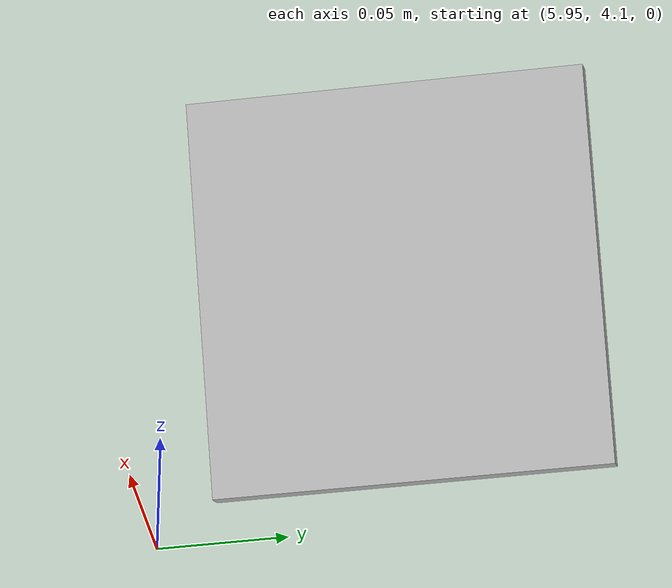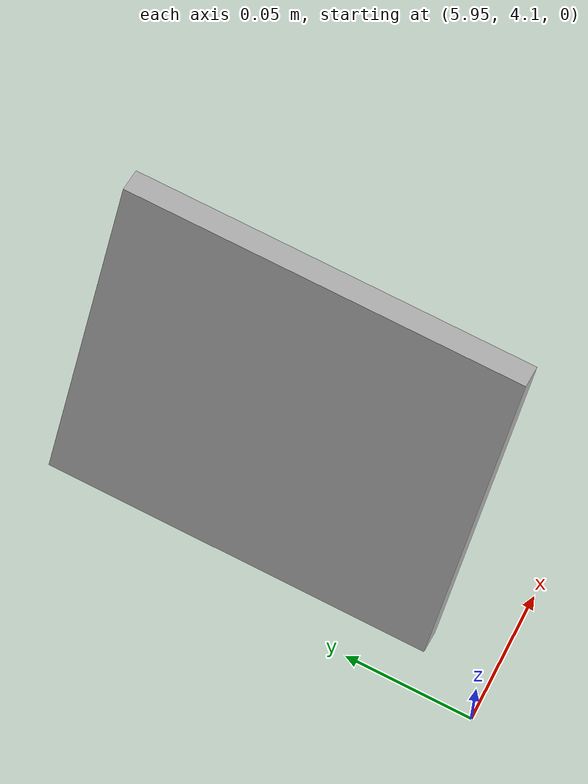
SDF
<?xml version='1.0'?>
<sdf version='1.6'>
  <model name='april_tag_final'>
    <link name='tag_final'>
    <pose frame=''>6 4.2 0.075 0 90 0</pose>
      <visual name='tag_final_visual'>
        <geometry>
          <box>
          <size>0.15 0.15 0.01</size>
          </box>
        </geometry>
           <material>
          <script>
            <uri>model://april_tag/Apriltag36_11_00002/materials/scripts</uri>
            <uri>model://april_tag/Apriltag36_11_00002/materials/textures</uri>
            <name>Apriltag36_11_00002</name>
          </script>
        </material>
      </visual>
     </link>
    <static>1</static>
  </model>
</sdf>
